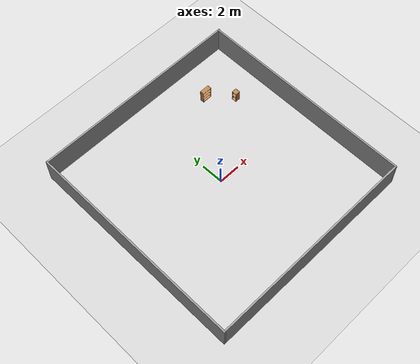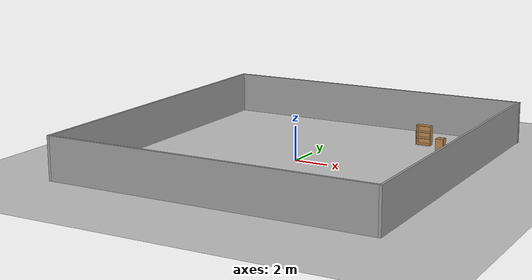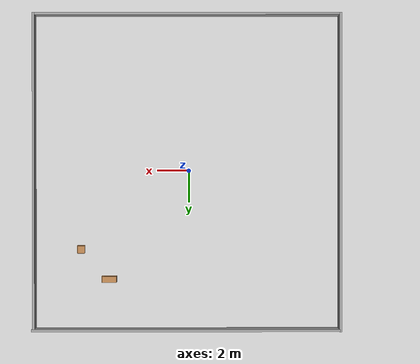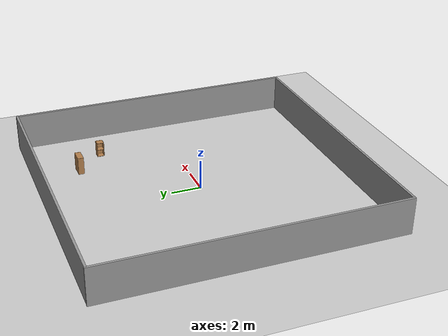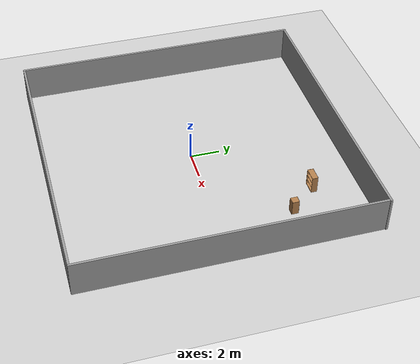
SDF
<sdf version="1.6">
 <world name="default">
  <light name="sun" type="directional">
   <pose>0 0 10 0 -0 0</pose>
   <diffuse>0.8 0.8 0.8 1</diffuse>
   <specular>0.1 0.1 0.1 1</specular>
   <attenuation>
    <range>1000</range>
    <constant>0.9</constant>
    <linear>0.01</linear>
    <quadratic>0.001</quadratic>
   </attenuation>
   <direction>-0.5 0.5 -1</direction>
  </light>
  <model name="ground_plane">
   <static>1</static>
   <link name="link">
    <collision name="collision">
     <geometry><plane><normal>0 0 1</normal><size>100 100</size></plane></geometry>
     <surface><friction><ode><mu>100</mu><mu2>50</mu2></ode></friction></surface>
    </collision>
    <visual name="visual">
     <cast_shadows>0</cast_shadows>
     <geometry><plane><normal>0 0 1</normal><size>100 100</size></plane></geometry>
     <material>
      <script><uri>file://media/materials/scripts/gazebo.material</uri><name>Gazebo/Grey</name></script>
     </material>
    </visual>
   </link>
  </model>
  <gravity>0 0 -9.8</gravity>
  <magnetic_field>6e-06 2.3e-05 -4.2e-05</magnetic_field>
  <atmosphere type="adiabatic"/>
  <physics name="default_physics" default="0" type="ode">
   <max_step_size>0.001</max_step_size>
   <real_time_factor>1</real_time_factor>
   <real_time_update_rate>1000</real_time_update_rate>
  </physics>
  <scene><ambient>0.4 0.4 0.4 1</ambient><background>0.7 0.7 0.7 1</background><shadows>1</shadows></scene>
  <spherical_coordinates>
   <surface_model>EARTH_WGS84</surface_model>
   <latitude_deg>0</latitude_deg>
   <longitude_deg>0</longitude_deg>
   <elevation>0</elevation>
   <heading_deg>0</heading_deg>
  </spherical_coordinates>
  <model name="test_world">
   <pose>0.153531 0.08337 0 0 -0 0</pose>
   <link name="Wall_12">
    <collision name="Wall_12_Collision">
     <geometry><box><size>19.3334 0.15 2.5</size></box></geometry>
     <pose>0 0 1.25 0 -0 0</pose>
    </collision>
    <visual name="Wall_12_Visual">
     <pose>0 0 1.25 0 -0 0</pose>
     <geometry><box><size>19.3334 0.15 2.5</size></box></geometry>
     <material>
      <script><uri>file://media/materials/scripts/gazebo.material</uri><name>Gazebo/Grey</name></script>
      <ambient>1 1 1 1</ambient>
     </material>
    </visual>
    <pose>0.046524 9.91038 0 0 -0 0</pose>
   </link>
   <link name="Wall_13">
    <collision name="Wall_13_Collision">
     <geometry><box><size>19.9858 0.15 2.5</size></box></geometry>
     <pose>0 0 1.25 0 -0 0</pose>
    </collision>
    <visual name="Wall_13_Visual">
     <pose>0 0 1.25 0 -0 0</pose>
     <geometry><box><size>19.9858 0.15 2.5</size></box></geometry>
     <material>
      <script><uri>file://media/materials/scripts/gazebo.material</uri><name>Gazebo/Grey</name></script>
      <ambient>1 1 1 1</ambient>
     </material>
    </visual>
    <pose>9.5917 -0.007247 0 0 0 -1.5708</pose>
   </link>
   <link name="Wall_14">
    <collision name="Wall_14_Collision">
     <geometry><box><size>19.1473 0.15 2.5</size></box></geometry>
     <pose>0 0 1.25 0 -0 0</pose>
    </collision>
    <visual name="Wall_14_Visual">
     <pose>0 0 1.25 0 -0 0</pose>
     <geometry><box><size>19.1473 0.15 2.5</size></box></geometry>
     <material>
      <script><uri>file://media/materials/scripts/gazebo.material</uri><name>Gazebo/Grey</name></script>
      <ambient>1 1 1 1</ambient>
     </material>
    </visual>
    <pose>0 -9.92488 0 0 -0 3.14159</pose>
   </link>
   <link name="Wall_17">
    <collision name="Wall_17_Collision">
     <geometry><box><size>20 0.15 2.5</size></box></geometry>
     <pose>0 0 1.25 0 -0 0</pose>
    </collision>
    <visual name="Wall_17_Visual">
     <pose>0 0 1.25 0 -0 0</pose>
     <geometry><box><size>20 0.15 2.5</size></box></geometry>
     <material>
      <script><uri>file://media/materials/scripts/gazebo.material</uri><name>Gazebo/Grey</name></script>
      <ambient>1 1 1 1</ambient>
     </material>
    </visual>
    <pose>-9.63822 0.000123 0 0 -0 1.5708</pose>
   </link>
   <static>1</static>
  </model>
  <model name="bookshelf">
   <static>1</static>
   <link name="link">
    <inertial><mass>1</mass></inertial>
    <collision name="back">
     <pose>0 0.005 0.6 0 -0 0</pose>
     <geometry><box><size>0.9 0.01 1.2</size></box></geometry>
    </collision>
    <visual name="visual1">
     <pose>0 0.005 0.6 0 -0 0</pose>
     <geometry><box><size>0.9 0.01 1.2</size></box></geometry>
     <material>
      <script><uri>file://media/materials/scripts/gazebo.material</uri><name>Gazebo/Wood</name></script>
     </material>
    </visual>
    <collision name="left_side">
     <pose>0.45 -0.195 0.6 0 -0 0</pose>
     <geometry><box><size>0.02 0.4 1.2</size></box></geometry>
    </collision>
    <visual name="visual2">
     <pose>0.45 -0.195 0.6 0 -0 0</pose>
     <geometry><box><size>0.02 0.4 1.2</size></box></geometry>
     <material>
      <script><uri>file://media/materials/scripts/gazebo.material</uri><name>Gazebo/Wood</name></script>
     </material>
    </visual>
    <collision name="right_side">
     <pose>-0.45 -0.195 0.6 0 -0 0</pose>
     <geometry><box><size>0.02 0.4 1.2</size></box></geometry>
    </collision>
    <visual name="visual3">
     <pose>-0.45 -0.195 0.6 0 -0 0</pose>
     <geometry><box><size>0.02 0.4 1.2</size></box></geometry>
     <material>
      <script><uri>file://media/materials/scripts/gazebo.material</uri><name>Gazebo/Wood</name></script>
     </material>
    </visual>
    <collision name="bottom">
     <pose>0 -0.195 0.03 0 -0 0</pose>
     <geometry><box><size>0.88 0.4 0.06</size></box></geometry>
    </collision>
    <visual name="visual4">
     <pose>0 -0.195 0.03 0 -0 0</pose>
     <geometry><box><size>0.88 0.4 0.06</size></box></geometry>
     <material>
      <script><uri>file://media/materials/scripts/gazebo.material</uri><name>Gazebo/Wood</name></script>
     </material>
    </visual>
    <collision name="top">
     <pose>0 -0.195 1.19 0 -0 0</pose>
     <geometry><box><size>0.88 0.4 0.02</size></box></geometry>
    </collision>
    <visual name="visual5">
     <pose>0 -0.195 1.19 0 -0 0</pose>
     <geometry><box><size>0.88 0.4 0.02</size></box></geometry>
     <material>
      <script><uri>file://media/materials/scripts/gazebo.material</uri><name>Gazebo/Wood</name></script>
     </material>
    </visual>
    <collision name="low_shelf">
     <pose>0 -0.195 0.43 0 -0 0</pose>
     <geometry><box><size>0.88 0.4 0.02</size></box></geometry>
    </collision>
    <visual name="visual6">
     <pose>0 -0.195 0.43 0 -0 0</pose>
     <geometry><box><size>0.88 0.4 0.02</size></box></geometry>
     <material>
      <script><uri>file://media/materials/scripts/gazebo.material</uri><name>Gazebo/Wood</name></script>
     </material>
    </visual>
    <collision name="high_shelf">
     <pose>0 -0.195 0.8 0 -0 0</pose>
     <geometry><box><size>0.88 0.4 0.02</size></box></geometry>
    </collision>
    <visual name="visual7">
     <pose>0 -0.195 0.8 0 -0 0</pose>
     <geometry><box><size>0.88 0.4 0.02</size></box></geometry>
     <material>
      <script><uri>file://media/materials/scripts/gazebo.material</uri><name>Gazebo/Wood</name></script>
     </material>
    </visual>
   </link>
   <pose>5.0353 7.03824 0 0 -0 0</pose>
  </model>
  <model name="cabinet">
   <static>1</static>
   <link name="cabinet_bottom_plate">
    <inertial>
     <pose>0 0 -1 0 -0 0</pose>
     <inertia><ixx>2.05</ixx><ixy>0</ixy><ixz>0</ixz><iyy>2.05</iyy><iyz>0</iyz><izz>2.05</izz></inertia>
     <mass>25</mass>
    </inertial>
    <collision name="cabinet_bottom_plate_geom">
     <pose>0 0 0.01 0 -0 0</pose>
     <geometry><box><size>0.45 0.45 0.02</size></box></geometry>
    </collision>
    <visual name="cabinet_bottom_plate_geom_visual">
     <pose>0 0 0.01 0 -0 0</pose>
     <geometry><box><size>0.45 0.45 0.02</size></box></geometry>
     <material>
      <script><uri>file://media/materials/scripts/gazebo.material</uri><name>Gazebo/Wood</name></script>
     </material>
    </visual>
    <collision name="cabinet_bottom_plate_geom_cabinet_back_plate">
     <pose>0.235 0 0.51 0 -0 0</pose>
     <geometry><box><size>0.02 0.45 1.02</size></box></geometry>
    </collision>
    <visual name="cabinet_bottom_plate_geom_cabinet_back_plate_visual">
     <pose>0.235 0 0.51 0 -0 0</pose>
     <geometry><box><size>0.02 0.45 1.02</size></box></geometry>
     <material>
      <script><uri>file://media/materials/scripts/gazebo.material</uri><name>Gazebo/Wood</name></script>
     </material>
    </visual>
    <collision name="cabinet_bottom_plate_geom_cabinet_left_plate">
     <pose>0 0.235 0.51 0 -0 0</pose>
     <geometry><box><size>0.45 0.02 1.02</size></box></geometry>
    </collision>
    <visual name="cabinet_bottom_plate_geom_cabinet_left_plate_visual">
     <pose>0 0.235 0.51 0 -0 0</pose>
     <geometry><box><size>0.45 0.02 1.02</size></box></geometry>
     <material>
      <script><uri>file://media/materials/scripts/gazebo.material</uri><name>Gazebo/Wood</name></script>
     </material>
    </visual>
    <collision name="cabinet_bottom_plate_geom_cabinet_middle_plate">
     <pose>0 0 0.51 0 -0 0</pose>
     <geometry><box><size>0.45 0.45 0.02</size></box></geometry>
    </collision>
    <visual name="cabinet_bottom_plate_geom_cabinet_middle_plate_visual">
     <pose>0 0 0.51 0 -0 0</pose>
     <geometry><box><size>0.45 0.45 0.02</size></box></geometry>
     <material>
      <script><uri>file://media/materials/scripts/gazebo.material</uri><name>Gazebo/Wood</name></script>
     </material>
    </visual>
    <collision name="cabinet_bottom_plate_geom_cabinet_right_plate">
     <pose>0 -0.235 0.51 0 -0 0</pose>
     <geometry><box><size>0.45 0.02 1.02</size></box></geometry>
    </collision>
    <visual name="cabinet_bottom_plate_geom_cabinet_right_plate_visual">
     <pose>0 -0.235 0.51 0 -0 0</pose>
     <geometry><box><size>0.45 0.02 1.02</size></box></geometry>
     <material>
      <script><uri>file://media/materials/scripts/gazebo.material</uri><name>Gazebo/Wood</name></script>
     </material>
    </visual>
    <collision name="cabinet_bottom_plate_geom_cabinet_top_plate">
     <pose>0 0 1.01 0 -0 0</pose>
     <geometry><box><size>0.45 0.45 0.02</size></box></geometry>
    </collision>
    <visual name="cabinet_bottom_plate_geom_cabinet_top_plate_visual">
     <pose>0 0 1.01 0 -0 0</pose>
     <geometry><box><size>0.45 0.45 0.02</size></box></geometry>
     <material>
      <script><uri>file://media/materials/scripts/gazebo.material</uri><name>Gazebo/Wood</name></script>
     </material>
    </visual>
   </link>
   <pose>6.81064 4.96018 0 0 -0 0</pose>
  </model>
 </world>
</sdf>
